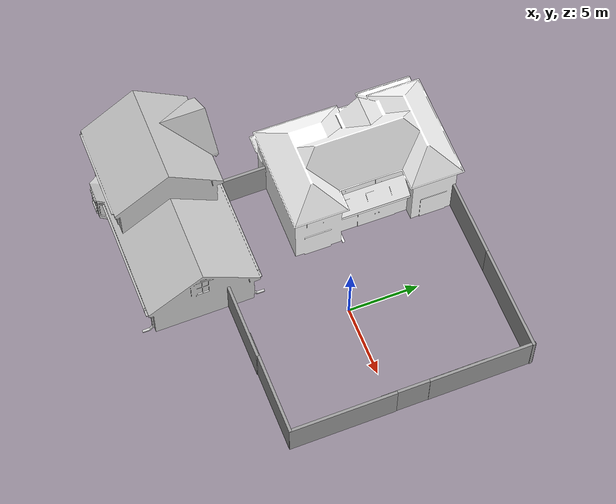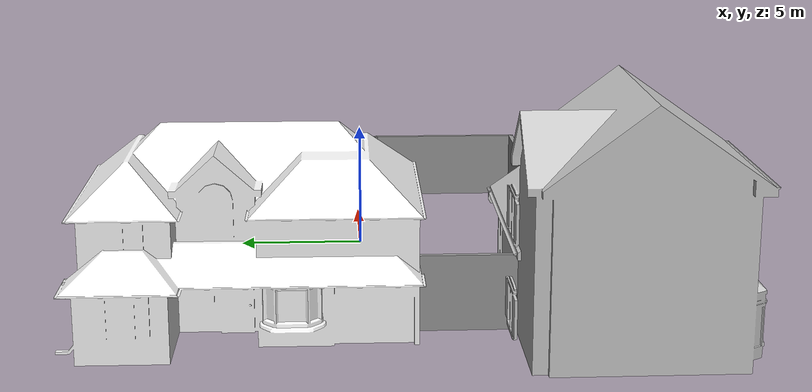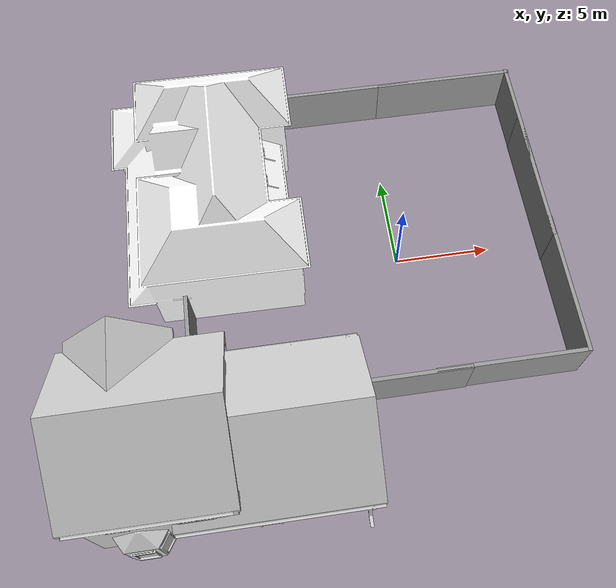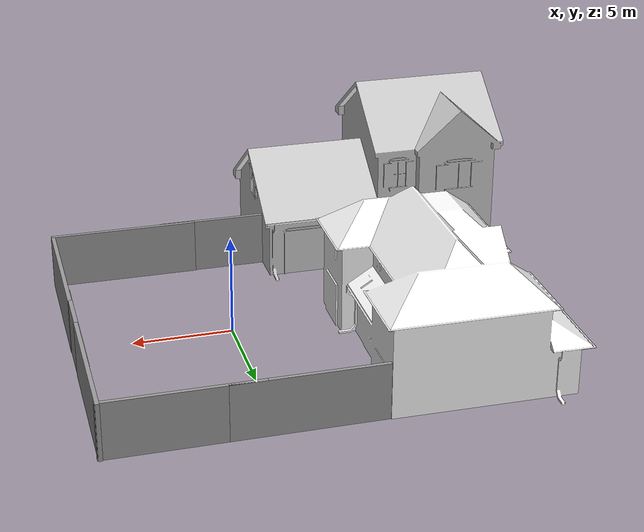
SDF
<?xml version='1.0'?>
<sdf version='1.7'>
  <model name='garden'>
    <model name='House 2'>
      <static>1</static>
      <link name='link'>
        <collision name='collision'>
          <geometry>
            <mesh>
              <uri>model://house_2/meshes/house_2.dae</uri>
              <scale>1.5 1.5 1.5</scale>
            </mesh>
          </geometry>
        </collision>
        <visual name='visual'>
          <geometry>
            <mesh>
              <uri>model://house_2/meshes/house_2.dae</uri>
              <scale>1.5 1.5 1.5</scale>
            </mesh>
          </geometry>
          <material>
            <script>
              <uri>model://house_2/materials/scripts</uri>
              <uri>model://house_2/materials/textures</uri>
              <uri>model://house_1/materials/textures</uri>
              <name>House_2/Diffuse</name>
            </script>
            <shader type='normal_map_tangent_space'>
              <normal_map>model://house_1/materials/textures/House_1_Normal.png</normal_map>
            </shader>
          </material>
        </visual>
      </link>
      <pose>-8.86321 3.13233 0 0 -0 1.56052</pose>
    </model>
    <model name='House 3'>
      <static>1</static>
      <link name='link'>
        <collision name='collision'>
          <geometry>
            <mesh>
              <uri>model://house_3/meshes/house_3.dae</uri>
              <scale>1.5 1.5 1.5</scale>
            </mesh>
          </geometry>
        </collision>
        <visual name='visual'>
          <geometry>
            <mesh>
              <uri>model://house_3/meshes/house_3.dae</uri>
              <scale>1.5 1.5 1.5</scale>
            </mesh>
          </geometry>
          <material>
            <script>
              <uri>model://house_3/materials/scripts</uri>
              <uri>model://house_3/materials/textures</uri>
              <uri>model://house_1/materials/textures</uri>
              <name>House_3/Diffuse</name>
            </script>
            <shader type='normal_map_tangent_space'>
              <normal_map>model://house_1/materials/textures/House_1_Normal.png</normal_map>
            </shader>
          </material>
        </visual>
      </link>
      <pose>-9.06591 -9.11097 0 0 -0 0</pose>
    </model>
    <model name='grey_wall'>
      <static>1</static>
      <link name='link'>
        <pose>0 0 1.4 0 -0 0</pose>
        <collision name='collision'>
          <geometry>
            <box>
              <size>7.5 0.2 2.8</size>
            </box>
          </geometry>
        </collision>
        <visual name='visual'>
          <cast_shadows>0</cast_shadows>
          <geometry>
            <box>
              <size>7.5 0.2 2.8</size>
            </box>
          </geometry>
          <material>
            <script>
              <uri>model://grey_wall/materials/scripts</uri>
              <uri>model://grey_wall/materials/textures</uri>
              <name>vrc/grey_wall</name>
            </script>
          </material>
        </visual>
      </link>
      <pose>-1.58098 -7.36005 0 0 -0 0</pose>
    </model>
    <model name='grey_wall_0'>
      <static>1</static>
      <link name='link'>
        <pose>0 0 1.4 0 -0 0</pose>
        <collision name='collision'>
          <geometry>
            <box>
              <size>7.5 0.2 2.8</size>
            </box>
          </geometry>
        </collision>
        <visual name='visual'>
          <cast_shadows>0</cast_shadows>
          <geometry>
            <box>
              <size>7.5 0.2 2.8</size>
            </box>
          </geometry>
          <material>
            <script>
              <uri>model://grey_wall/materials/scripts</uri>
              <uri>model://grey_wall/materials/textures</uri>
              <name>vrc/grey_wall</name>
            </script>
          </material>
        </visual>
      </link>
      <pose>4.16023 -7.31016 0 0 -0 0</pose>
    </model>
    <model name='grey_wall_1'>
      <static>1</static>
      <link name='link'>
        <pose>0 0 1.4 0 -0 0</pose>
        <collision name='collision'>
          <geometry>
            <box>
              <size>7.5 0.2 2.8</size>
            </box>
          </geometry>
        </collision>
        <visual name='visual'>
          <cast_shadows>0</cast_shadows>
          <geometry>
            <box>
              <size>7.5 0.2 2.8</size>
            </box>
          </geometry>
          <material>
            <script>
              <uri>model://grey_wall/materials/scripts</uri>
              <uri>model://grey_wall/materials/textures</uri>
              <name>vrc/grey_wall</name>
            </script>
          </material>
        </visual>
      </link>
      <pose>7.84704 -3.65354 0 0 0 -1.57527</pose>
    </model>
    <model name='grey_wall_1_clone'>
      <static>1</static>
      <link name='link'>
        <pose>0 0 1.4 0 -0 0</pose>
        <collision name='collision'>
          <geometry>
            <box>
              <size>7.5 0.2 2.8</size>
            </box>
          </geometry>
        </collision>
        <visual name='visual'>
          <cast_shadows>0</cast_shadows>
          <geometry>
            <box>
              <size>7.5 0.2 2.8</size>
            </box>
          </geometry>
          <material>
            <script>
              <uri>model://grey_wall/materials/scripts</uri>
              <uri>model://grey_wall/materials/textures</uri>
              <name>vrc/grey_wall</name>
            </script>
          </material>
        </visual>
      </link>
      <pose>7.85127 2.73635 0 0 0 -1.57527</pose>
    </model>
    <model name='grey_wall_1_clone_clone'>
      <static>1</static>
      <link name='link'>
        <pose>0 0 1.4 0 -0 0</pose>
        <collision name='collision'>
          <geometry>
            <box>
              <size>7.5 0.2 2.8</size>
            </box>
          </geometry>
        </collision>
        <visual name='visual'>
          <cast_shadows>0</cast_shadows>
          <geometry>
            <box>
              <size>7.5 0.2 2.8</size>
            </box>
          </geometry>
          <material>
            <script>
              <uri>model://grey_wall/materials/scripts</uri>
              <uri>model://grey_wall/materials/textures</uri>
              <name>vrc/grey_wall</name>
            </script>
          </material>
        </visual>
      </link>
      <pose>7.88221 6.10672 0 0 0 -1.57527</pose>
    </model>
    <model name='grey_wall_2'>
      <static>1</static>
      <link name='link'>
        <pose>0 0 1.4 0 -0 0</pose>
        <collision name='collision'>
          <geometry>
            <box>
              <size>7.5 0.2 2.8</size>
            </box>
          </geometry>
        </collision>
        <visual name='visual'>
          <cast_shadows>0</cast_shadows>
          <geometry>
            <box>
              <size>7.5 0.2 2.8</size>
            </box>
          </geometry>
          <material>
            <script>
              <uri>model://grey_wall/materials/scripts</uri>
              <uri>model://grey_wall/materials/textures</uri>
              <name>vrc/grey_wall</name>
            </script>
          </material>
        </visual>
      </link>
      <pose>4.28187 9.70328 0 0 -0 0</pose>
    </model>
    <model name='grey_wall_3'>
      <static>1</static>
      <link name='link'>
        <pose>0 0 1.4 0 -0 0</pose>
        <collision name='collision'>
          <geometry>
            <box>
              <size>7.5 0.2 2.8</size>
            </box>
          </geometry>
        </collision>
        <visual name='visual'>
          <cast_shadows>0</cast_shadows>
          <geometry>
            <box>
              <size>7.5 0.2 2.8</size>
            </box>
          </geometry>
          <material>
            <script>
              <uri>model://grey_wall/materials/scripts</uri>
              <uri>model://grey_wall/materials/textures</uri>
              <name>vrc/grey_wall</name>
            </script>
          </material>
        </visual>
      </link>
      <pose>-1.47399 9.70434 0 0 -0 0</pose>
    </model>
    <model name='grey_wall_4'>
      <static>1</static>
      <link name='link'>
        <pose>0 0 1.4 0 -0 0</pose>
        <collision name='collision'>
          <geometry>
            <box>
              <size>7.5 0.2 2.8</size>
            </box>
          </geometry>
        </collision>
        <visual name='visual'>
          <cast_shadows>0</cast_shadows>
          <geometry>
            <box>
              <size>7.5 0.2 2.8</size>
            </box>
          </geometry>
          <material>
            <script>
              <uri>model://grey_wall/materials/scripts</uri>
              <uri>model://grey_wall/materials/textures</uri>
              <name>vrc/grey_wall</name>
            </script>
          </material>
        </visual>
      </link>
      <pose>-11.0385 -3.94832 0 0 0 -1.57369</pose>
    </model>
    <static>0</static>
    <allow_auto_disable>1</allow_auto_disable>
  </model>
</sdf>
